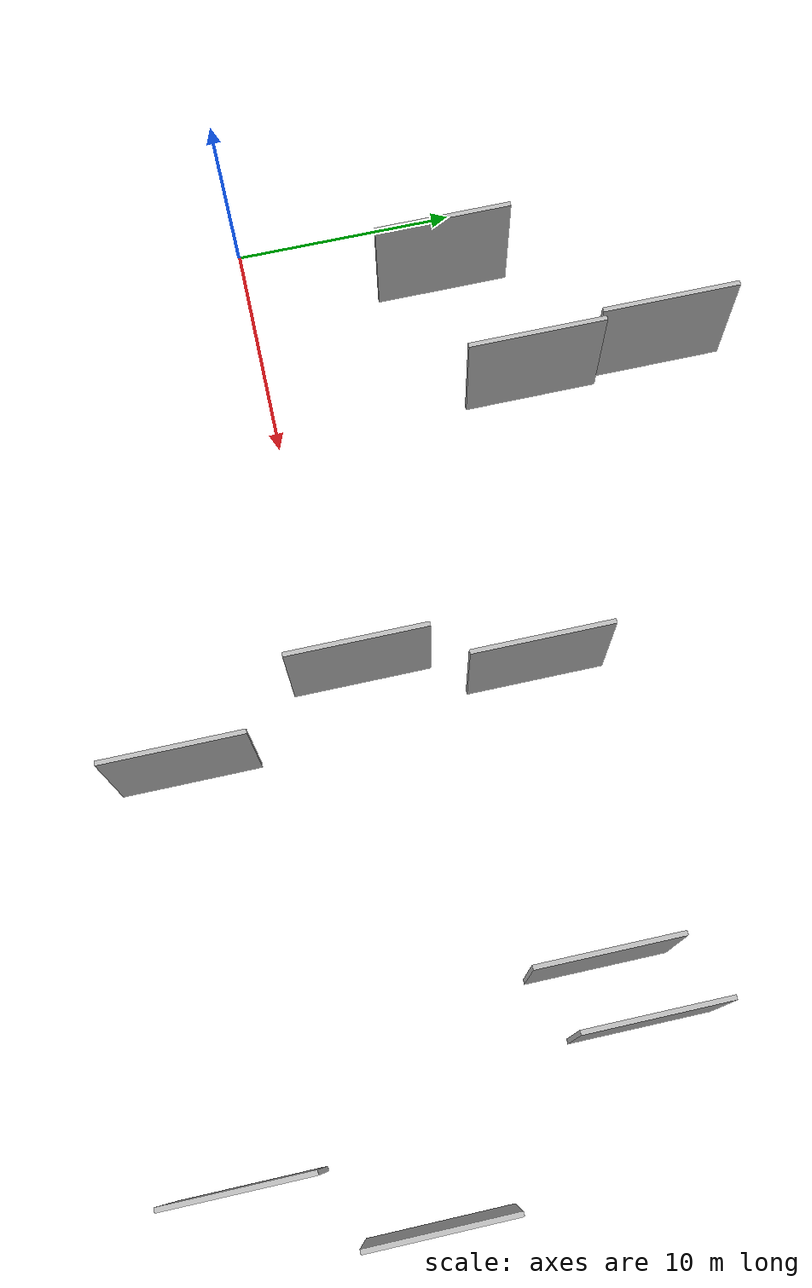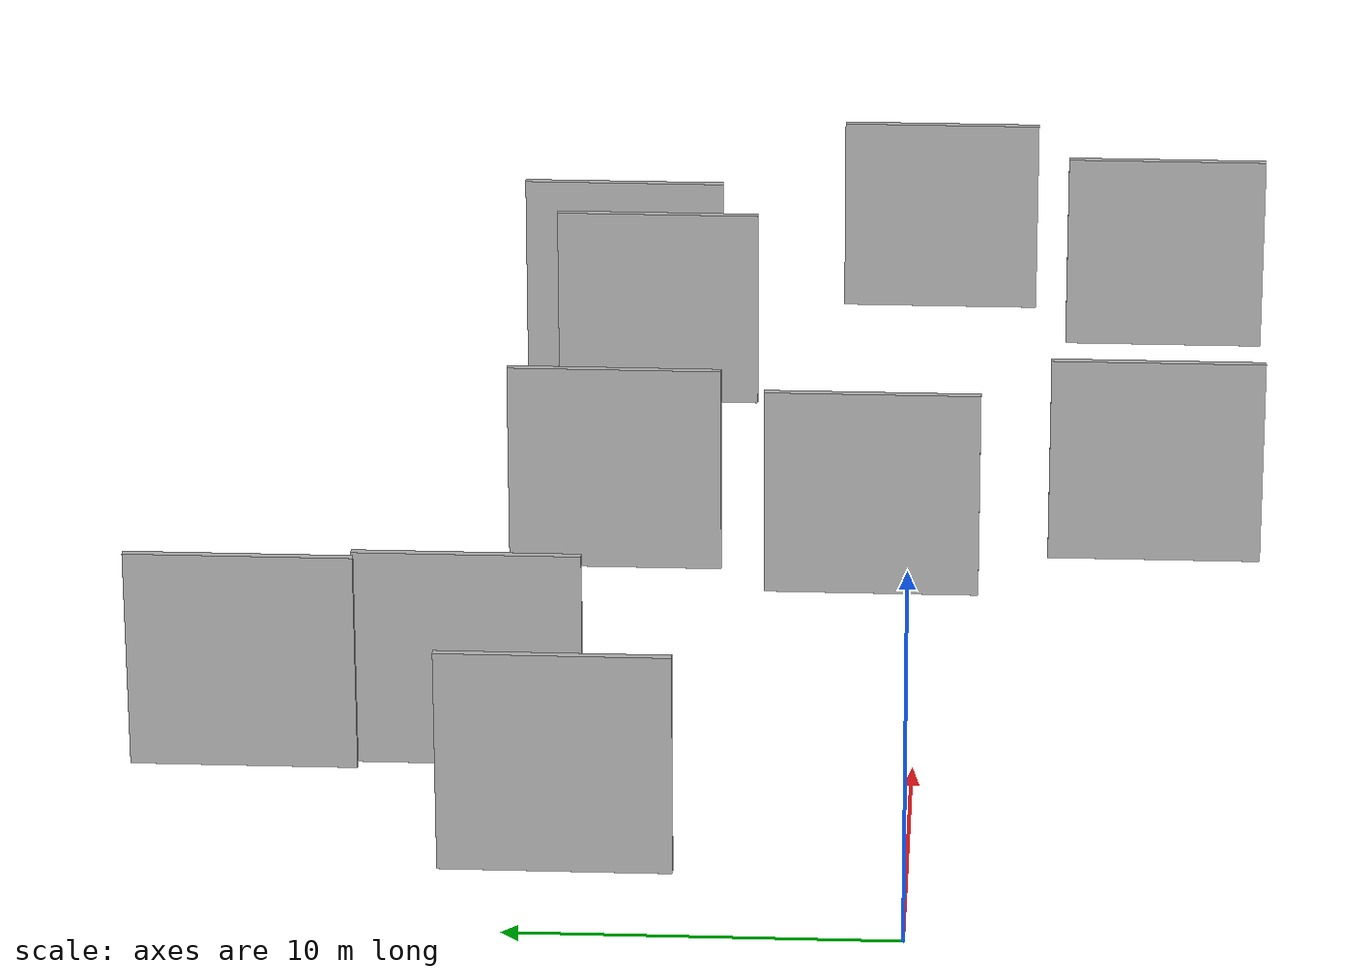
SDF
<sdf version="1.6">
 <world name="default">
  <scene>
   <sky><clouds><speed>12</speed></clouds></sky>
   <ambient>0.4 0.4 0.4 1</ambient>
   <background>0.7 0.7 0.7 1</background>
   <shadows>1</shadows>
  </scene>
  <gravity>0 0 -9.8066</gravity>
  <magnetic_field>6e-06 2.3e-05 -4.2e-05</magnetic_field>
  <physics default="0" name="default_physics" type="ode">
   <ode>
    <solver>
     <type>quick</type>
     <iters>10</iters>
     <sor>1.0</sor>
     <use_dynamic_moi_rescaling>0</use_dynamic_moi_rescaling>
    </solver>
    <constraints>
     <cfm>0</cfm>
     <erp>0.2</erp>
     <contact_max_correcting_vel>100</contact_max_correcting_vel>
     <contact_surface_layer>0.001</contact_surface_layer>
    </constraints>
   </ode>
   <max_step_size>0.004</max_step_size>
   <real_time_factor>1</real_time_factor>
   <real_time_update_rate>250</real_time_update_rate>
  </physics>
  <light name="sun" type="directional">
   <pose>0 0 10 0 0 0</pose>
   <diffuse>0.8 0.8 0.8 1</diffuse>
   <specular>0.2 0.2 0.2 1</specular>
   <attenuation>
    <range>1000</range>
    <constant>0.9</constant>
    <linear>0.01</linear>
    <quadratic>0.001</quadratic>
   </attenuation>
   <direction>-0.5 0.1 -0.9</direction>
  </light>
  <model name="grey_wall_1">
   <static>1</static>
   <pose>9.4167 17.5846 0.0 0.000000 0.000000 1.570796</pose>
   <link name="link">
    <pose>0 0 3.00 0 0 0</pose>
    <collision name="collision"><geometry><box><size>6.00 0.2 6.00</size></box></geometry></collision>
    <visual name="visual">
     <cast_shadows>0</cast_shadows>
     <geometry><box><size>6.00 0.2 6.00</size></box></geometry>
     <material>
      <script>
       <uri>model://HANNAS_wall/materials/scripts</uri>
       <uri>model://HANNAS_wall/materials/textures</uri>
       <name>vrc/HANNAS_wall</name>
      </script>
     </material>
    </visual>
   </link>
  </model>
  <model name="grey_wall_2">
   <static>1</static>
   <pose>40.8802 -7.0131 0.0 0.000000 0.000000 1.570796</pose>
   <link name="link">
    <pose>0 0 3.00 0 0 0</pose>
    <collision name="collision"><geometry><box><size>6.00 0.2 6.00</size></box></geometry></collision>
    <visual name="visual">
     <cast_shadows>0</cast_shadows>
     <geometry><box><size>6.00 0.2 6.00</size></box></geometry>
     <material>
      <script>
       <uri>model://HANNAS_wall/materials/scripts</uri>
       <uri>model://HANNAS_wall/materials/textures</uri>
       <name>vrc/HANNAS_wall</name>
      </script>
     </material>
    </visual>
   </link>
  </model>
  <model name="grey_wall_3">
   <static>1</static>
   <pose>22.9188 8.7132 0.0 0.000000 0.000000 1.570796</pose>
   <link name="link">
    <pose>0 0 3.00 0 0 0</pose>
    <collision name="collision"><geometry><box><size>6.00 0.2 6.00</size></box></geometry></collision>
    <visual name="visual">
     <cast_shadows>0</cast_shadows>
     <geometry><box><size>6.00 0.2 6.00</size></box></geometry>
     <material>
      <script>
       <uri>model://HANNAS_wall/materials/scripts</uri>
       <uri>model://HANNAS_wall/materials/textures</uri>
       <name>vrc/HANNAS_wall</name>
      </script>
     </material>
    </visual>
   </link>
  </model>
  <model name="grey_wall_4">
   <static>1</static>
   <pose>21.4233 1.4377 0.0 0.000000 0.000000 1.570796</pose>
   <link name="link">
    <pose>0 0 3.00 0 0 0</pose>
    <collision name="collision"><geometry><box><size>6.00 0.2 6.00</size></box></geometry></collision>
    <visual name="visual">
     <cast_shadows>0</cast_shadows>
     <geometry><box><size>6.00 0.2 6.00</size></box></geometry>
     <material>
      <script>
       <uri>model://HANNAS_wall/materials/scripts</uri>
       <uri>model://HANNAS_wall/materials/textures</uri>
       <name>vrc/HANNAS_wall</name>
      </script>
     </material>
    </visual>
   </link>
  </model>
  <model name="grey_wall_5">
   <static>1</static>
   <pose>43.8622 -0.0784 0.0 0.000000 0.000000 1.570796</pose>
   <link name="link">
    <pose>0 0 3.00 0 0 0</pose>
    <collision name="collision"><geometry><box><size>6.00 0.2 6.00</size></box></geometry></collision>
    <visual name="visual">
     <cast_shadows>0</cast_shadows>
     <geometry><box><size>6.00 0.2 6.00</size></box></geometry>
     <material>
      <script>
       <uri>model://HANNAS_wall/materials/scripts</uri>
       <uri>model://HANNAS_wall/materials/textures</uri>
       <name>vrc/HANNAS_wall</name>
      </script>
     </material>
    </visual>
   </link>
  </model>
  <model name="grey_wall_6">
   <static>1</static>
   <pose>38.1529 9.4291 0.0 0.000000 0.000000 1.570796</pose>
   <link name="link">
    <pose>0 0 3.00 0 0 0</pose>
    <collision name="collision"><geometry><box><size>6.00 0.2 6.00</size></box></geometry></collision>
    <visual name="visual">
     <cast_shadows>0</cast_shadows>
     <geometry><box><size>6.00 0.2 6.00</size></box></geometry>
     <material>
      <script>
       <uri>model://HANNAS_wall/materials/scripts</uri>
       <uri>model://HANNAS_wall/materials/textures</uri>
       <name>vrc/HANNAS_wall</name>
      </script>
     </material>
    </visual>
   </link>
  </model>
  <model name="grey_wall_7">
   <static>1</static>
   <pose>9.8026 11.6650 0.0 0.000000 0.000000 1.570796</pose>
   <link name="link">
    <pose>0 0 3.00 0 0 0</pose>
    <collision name="collision"><geometry><box><size>6.00 0.2 6.00</size></box></geometry></collision>
    <visual name="visual">
     <cast_shadows>0</cast_shadows>
     <geometry><box><size>6.00 0.2 6.00</size></box></geometry>
     <material>
      <script>
       <uri>model://HANNAS_wall/materials/scripts</uri>
       <uri>model://HANNAS_wall/materials/textures</uri>
       <name>vrc/HANNAS_wall</name>
      </script>
     </material>
    </visual>
   </link>
  </model>
  <model name="grey_wall_8">
   <static>1</static>
   <pose>3.5884 8.9396 0.0 0.000000 0.000000 1.570796</pose>
   <link name="link">
    <pose>0 0 3.00 0 0 0</pose>
    <collision name="collision"><geometry><box><size>6.00 0.2 6.00</size></box></geometry></collision>
    <visual name="visual">
     <cast_shadows>0</cast_shadows>
     <geometry><box><size>6.00 0.2 6.00</size></box></geometry>
     <material>
      <script>
       <uri>model://HANNAS_wall/materials/scripts</uri>
       <uri>model://HANNAS_wall/materials/textures</uri>
       <name>vrc/HANNAS_wall</name>
      </script>
     </material>
    </visual>
   </link>
  </model>
  <model name="grey_wall_9">
   <static>1</static>
   <pose>24.1750 -6.5038 0.0 0.000000 0.000000 1.570796</pose>
   <link name="link">
    <pose>0 0 3.00 0 0 0</pose>
    <collision name="collision"><geometry><box><size>6.00 0.2 6.00</size></box></geometry></collision>
    <visual name="visual">
     <cast_shadows>0</cast_shadows>
     <geometry><box><size>6.00 0.2 6.00</size></box></geometry>
     <material>
      <script>
       <uri>model://HANNAS_wall/materials/scripts</uri>
       <uri>model://HANNAS_wall/materials/textures</uri>
       <name>vrc/HANNAS_wall</name>
      </script>
     </material>
    </visual>
   </link>
  </model>
  <model name="grey_wall_10">
   <static>1</static>
   <pose>35.4571 8.2596 0.0 0.000000 0.000000 1.570796</pose>
   <link name="link">
    <pose>0 0 3.00 0 0 0</pose>
    <collision name="collision"><geometry><box><size>6.00 0.2 6.00</size></box></geometry></collision>
    <visual name="visual">
     <cast_shadows>0</cast_shadows>
     <geometry><box><size>6.00 0.2 6.00</size></box></geometry>
     <material>
      <script>
       <uri>model://HANNAS_wall/materials/scripts</uri>
       <uri>model://HANNAS_wall/materials/textures</uri>
       <name>vrc/HANNAS_wall</name>
      </script>
     </material>
    </visual>
   </link>
  </model>
 </world>
</sdf>
